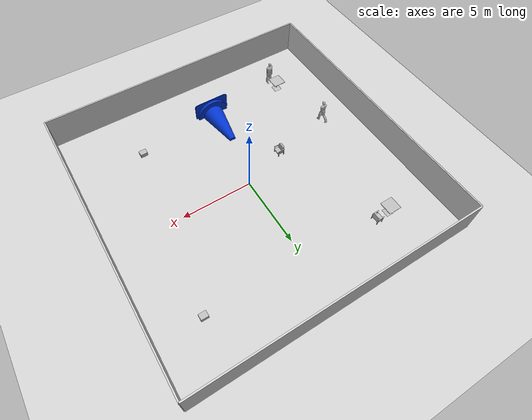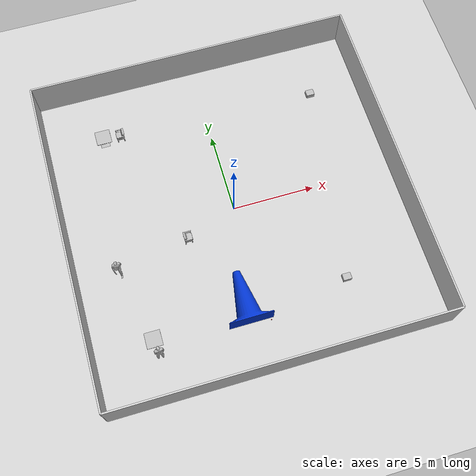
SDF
<sdf version="1.7">
 <world name="test_room">
  <light name="sun" type="directional">
   <pose>0 0 10 0 -0 0</pose>
   <diffuse>0.8 0.8 0.8 1</diffuse>
   <specular>0.2 0.2 0.2 1</specular>
   <attenuation>
    <range>1000</range>
    <constant>0.9</constant>
    <linear>0.01</linear>
    <quadratic>0.001</quadratic>
   </attenuation>
   <direction>-0.5 0.1 -0.9</direction>
   <spot><inner_angle>0</inner_angle><outer_angle>0</outer_angle><falloff>0</falloff></spot>
  </light>
  <model name="ground_plane">
   <static>1</static>
   <link name="link">
    <collision name="collision">
     <geometry><plane><normal>0 0 1</normal><size>100 100</size></plane></geometry>
     <surface>
      <contact><collide_bitmask>65535</collide_bitmask></contact>
      <friction><ode><mu>100</mu><mu2>50</mu2></ode></friction>
     </surface>
    </collision>
    <visual name="visual">
     <cast_shadows>0</cast_shadows>
     <geometry><plane><normal>0 0 1</normal><size>100 100</size></plane></geometry>
     <material>
      <script><uri>file://media/materials/scripts/gazebo.material</uri><name>Gazebo/Grey</name></script>
     </material>
    </visual>
   </link>
  </model>
  <model name="room">
   <static>1</static>
   <link name="wall_back">
    <visual name="back_visual">
     <geometry><box><size>20 0.1 2.5</size></box></geometry>
     <pose>0 -10 1.25 0 -0 0</pose>
     <material><ambient>0.8 0.8 0.8 1</ambient></material>
    </visual>
    <collision name="back_collision">
     <pose>0 -10 1.25 0 -0 0</pose>
     <geometry><box><size>20 0.1 2.5</size></box></geometry>
    </collision>
   </link>
   <link name="wall_front">
    <visual name="front_visual">
     <geometry><box><size>20 0.1 2.5</size></box></geometry>
     <pose>0 10 1.25 0 -0 0</pose>
     <material><ambient>0.8 0.8 0.8 1</ambient></material>
    </visual>
    <collision name="front_collision">
     <pose>0 10 1.25 0 -0 0</pose>
     <geometry><box><size>20 0.1 2.5</size></box></geometry>
    </collision>
   </link>
   <link name="wall_left">
    <visual name="left_visual">
     <geometry><box><size>0.1 20 2.5</size></box></geometry>
     <pose>-10 0 1.25 0 -0 0</pose>
     <material><ambient>0.8 0.8 0.8 1</ambient></material>
    </visual>
    <collision name="left_collision">
     <pose>-10 0 1.25 0 -0 0</pose>
     <geometry><box><size>0.1 20 2.5</size></box></geometry>
    </collision>
   </link>
   <link name="wall_right">
    <visual name="right_visual">
     <geometry><box><size>0.1 20 2.5</size></box></geometry>
     <pose>10 0 1.25 0 -0 0</pose>
     <material><ambient>0.8 0.8 0.8 1</ambient></material>
    </visual>
    <collision name="right_collision">
     <pose>10 0 1.25 0 -0 0</pose>
     <geometry><box><size>0.1 20 2.5</size></box></geometry>
    </collision>
   </link>
  </model>
  <gravity>0 0 -9.8</gravity>
  <magnetic_field>6e-06 2.3e-05 -4.2e-05</magnetic_field>
  <atmosphere type="adiabatic"/>
  <physics type="ode">
   <max_step_size>0.001</max_step_size>
   <real_time_factor>1</real_time_factor>
   <real_time_update_rate>1000</real_time_update_rate>
  </physics>
  <scene><ambient>0.4 0.4 0.4 1</ambient><background>0.7 0.7 0.7 1</background><shadows>1</shadows></scene>
  <audio><device>default</device></audio>
  <spherical_coordinates>
   <surface_model>EARTH_WGS84</surface_model>
   <latitude_deg>0</latitude_deg>
   <longitude_deg>0</longitude_deg>
   <elevation>0</elevation>
   <heading_deg>0</heading_deg>
  </spherical_coordinates>
  <model name="cardboard_box">
   <pose>6.91654 6.31066 0.149 0 -0 0</pose>
   <link name="link">
    <inertial>
     <mass>2</mass>
     <inertia>
      <ixx>0.0416667</ixx>
      <ixy>0</ixy>
      <ixz>0</ixz>
      <iyy>0.0566667</iyy>
      <iyz>0</iyz>
      <izz>0.0683333</izz>
     </inertia>
    </inertial>
    <collision name="collision">
     <geometry><box><size>0.5 0.4 0.3</size></box></geometry>
     <surface>
      <friction><ode><mu>1</mu><mu2>1</mu2></ode></friction>
      <contact><ode><kp>1e+07</kp><kd>1</kd><min_depth>0.001</min_depth><max_vel>0.1</max_vel></ode></contact>
     </surface>
    </collision>
    <visual name="visual">
     <pose>0 0 -0.15 0 -0 0</pose>
     <geometry>
      <mesh><uri>model://cardboard_box/meshes/cardboard_box.dae</uri><scale>1.25932 1.00745 0.755591</scale></mesh>
     </geometry>
    </visual>
   </link>
  </model>
  <model name="cafe_table">
   <static>1</static>
   <link name="link">
    <collision name="surface">
     <pose>0 0 0.755 0 -0 0</pose>
     <geometry><box><size>0.913 0.913 0.04</size></box></geometry>
    </collision>
    <collision name="column">
     <pose>0 0 0.37 0 -0 0</pose>
     <geometry><box><size>0.042 0.042 0.74</size></box></geometry>
    </collision>
    <collision name="base">
     <pose>0 0 0.02 0 -0 0</pose>
     <geometry><box><size>0.56 0.56 0.04</size></box></geometry>
    </collision>
    <visual name="visual">
     <geometry><mesh><uri>model://cafe_table/meshes/cafe_table.dae</uri></mesh></geometry>
    </visual>
   </link>
   <pose>-6.54458 -6.57116 0 0 -0 0</pose>
  </model>
  <model name="Chair">
   <link name="body">
    <pose>0 0 0 0 -0 1.5708</pose>
    <visual name="visual">
     <geometry>
      <mesh><uri>model://Chair/meshes/Chair.obj</uri><scale>0.00817 0.00817 0.00817</scale></mesh>
     </geometry>
    </visual>
    <collision name="collision">
     <geometry>
      <mesh><uri>model://Chair/meshes/Chair.obj</uri><scale>0.00817 0.00817 0.00817</scale></mesh>
     </geometry>
    </collision>
    <inertial>
     <inertia><ixx>1</ixx><ixy>0</ixy><ixz>0</ixz><iyy>1</iyy><iyz>0</iyz><izz>1</izz></inertia>
     <mass>1</mass>
    </inertial>
   </link>
   <pose>-3.10729 -1.12409 4e-06 6e-06 1.3e-05 -0</pose>
  </model>
  <model name="cafe_table_0">
   <static>1</static>
   <link name="link">
    <collision name="surface">
     <pose>0 0 0.755 0 -0 0</pose>
     <geometry><box><size>0.913 0.913 0.04</size></box></geometry>
    </collision>
    <collision name="column">
     <pose>0 0 0.37 0 -0 0</pose>
     <geometry><box><size>0.042 0.042 0.74</size></box></geometry>
    </collision>
    <collision name="base">
     <pose>0 0 0.02 0 -0 0</pose>
     <geometry><box><size>0.56 0.56 0.04</size></box></geometry>
    </collision>
    <visual name="visual">
     <geometry><mesh><uri>model://cafe_table/meshes/cafe_table.dae</uri></mesh></geometry>
    </visual>
   </link>
   <pose>-6.49458 6.55208 0 0 -0 0</pose>
  </model>
  <model name="Chair_0">
   <link name="body">
    <pose>0 0 0 0 -0 1.5708</pose>
    <visual name="visual">
     <geometry>
      <mesh><uri>model://Chair/meshes/Chair.obj</uri><scale>0.00817 0.00817 0.00817</scale></mesh>
     </geometry>
    </visual>
    <collision name="collision">
     <geometry>
      <mesh><uri>model://Chair/meshes/Chair.obj</uri><scale>0.00817 0.00817 0.00817</scale></mesh>
     </geometry>
    </collision>
    <inertial>
     <inertia><ixx>1</ixx><ixy>0</ixy><ixz>0</ixz><iyy>1</iyy><iyz>0</iyz><izz>1</izz></inertia>
     <mass>1</mass>
    </inertial>
   </link>
   <pose>-5.5 6.64115 -1e-06 -3e-06 -0 3.14149</pose>
  </model>
  <model name="cardboard_box_0">
   <pose>5.04401 -6.00441 0.149 0 -0 0</pose>
   <link name="link">
    <inertial>
     <mass>2</mass>
     <inertia>
      <ixx>0.0416667</ixx>
      <ixy>0</ixy>
      <ixz>0</ixz>
      <iyy>0.0566667</iyy>
      <iyz>0</iyz>
      <izz>0.0683333</izz>
     </inertia>
    </inertial>
    <collision name="collision">
     <geometry><box><size>0.5 0.4 0.3</size></box></geometry>
     <surface>
      <friction><ode><mu>1</mu><mu2>1</mu2></ode></friction>
      <contact><ode><kp>1e+07</kp><kd>1</kd><min_depth>0.001</min_depth><max_vel>0.1</max_vel></ode></contact>
     </surface>
    </collision>
    <visual name="visual">
     <pose>0 0 -0.15 0 -0 0</pose>
     <geometry>
      <mesh><uri>model://cardboard_box/meshes/cardboard_box.dae</uri><scale>1.25932 1.00745 0.755591</scale></mesh>
     </geometry>
    </visual>
   </link>
  </model>
  <model name="cone_red">
   <static>1</static>
   <link name="link">
    <visual name="visual">
     <geometry><mesh><uri>model://cone_red/meshes/cone.stl</uri><scale>0.01 0.01 0.01</scale></mesh></geometry>
     <material><ambient>1 0.2 0.1 1</ambient><diffuse>1 0.2 0.1 1</diffuse></material>
    </visual>
    <collision name="collision">
     <geometry><mesh><uri>model://cone_red/meshes/cone.stl</uri><scale>0.01 0.01 0.01</scale></mesh></geometry>
    </collision>
    <inertial>
     <mass>0.1</mass>
     <inertia><ixx>0.0001</ixx><iyy>0.0001</iyy><izz>0.0001</izz><ixy>0</ixy><ixz>0</ixz><iyz>0</iyz></inertia>
    </inertial>
   </link>
   <pose>0.136929 -7.15753 0 0 -0 0</pose>
  </model>
  <model name="cone_blue">
   <static>1</static>
   <link name="link">
    <visual name="visual">
     <geometry><mesh><uri>model://cone_blue/meshes/cone.stl</uri><scale>0.01 0.01 0.01</scale></mesh></geometry>
     <material><ambient>0 0.2 0.8 1</ambient><diffuse>0 0.2 0.8 1</diffuse></material>
    </visual>
    <collision name="collision">
     <geometry><mesh><uri>model://cone_blue/meshes/cone.stl</uri><scale>0.01 0.01 0.01</scale></mesh></geometry>
    </collision>
    <inertial>
     <mass>0.1</mass>
     <inertia><ixx>0.0001</ixx><iyy>0.0001</iyy><izz>0.0001</izz><ixy>0</ixy><ixz>0</ixz><iyz>0</iyz></inertia>
    </inertial>
   </link>
   <pose>-1 -6.77844 0 0 -0 0</pose>
  </model>
  <model name="person_standing_0">
   <link name="link">
    <inertial>
     <pose>0 -0.1 0.95 0 -0 0</pose>
     <mass>80</mass>
     <inertia><ixx>24.88</ixx><ixy>0</ixy><ixz>0</ixz><iyy>25.73</iyy><iyz>0</iyz><izz>2.48</izz></inertia>
    </inertial>
    <collision name="bottom">
     <pose>0 -0.1 0.01 0 -0 0</pose>
     <geometry><box><size>0.5 0.35 0.02</size></box></geometry>
    </collision>
    <collision name="person">
     <pose>0 0 0.02 0.04 -0 0</pose>
     <geometry><mesh><uri>model://person_standing/meshes/standing.dae</uri></mesh></geometry>
    </collision>
    <visual name="visual">
     <pose>0 0 0.02 0.04 -0 0</pose>
     <geometry><mesh><uri>model://person_standing/meshes/standing.dae</uri></mesh></geometry>
    </visual>
   </link>
   <pose>-6.3948 -7.5 -0 -1e-06 -1e-06 -3.13035</pose>
  </model>
  <model name="person_walking">
   <link name="link">
    <inertial>
     <pose>0 0 0.95 0 -0 0</pose>
     <mass>80</mass>
     <inertia><ixx>27.82</ixx><ixy>0</ixy><ixz>0</ixz><iyy>24.88</iyy><iyz>0</iyz><izz>4.57</izz></inertia>
    </inertial>
    <collision name="bottom">
     <pose>0 0 0.01 0 -0 0</pose>
     <geometry><box><size>0.35 0.75 0.02</size></box></geometry>
    </collision>
    <collision name="person">
     <pose>0 0 -0.02 0 -0 0</pose>
     <geometry><mesh><uri>model://person_walking/meshes/walking.dae</uri></mesh></geometry>
    </collision>
    <visual name="visual">
     <pose>0 0 -0.02 0 -0 0</pose>
     <geometry><mesh><uri>model://person_walking/meshes/walking.dae</uri></mesh></geometry>
    </visual>
   </link>
   <pose>-7.52982 -2.00416 0 1e-06 -1e-06 0.000826</pose>
  </model>
 </world>
</sdf>
